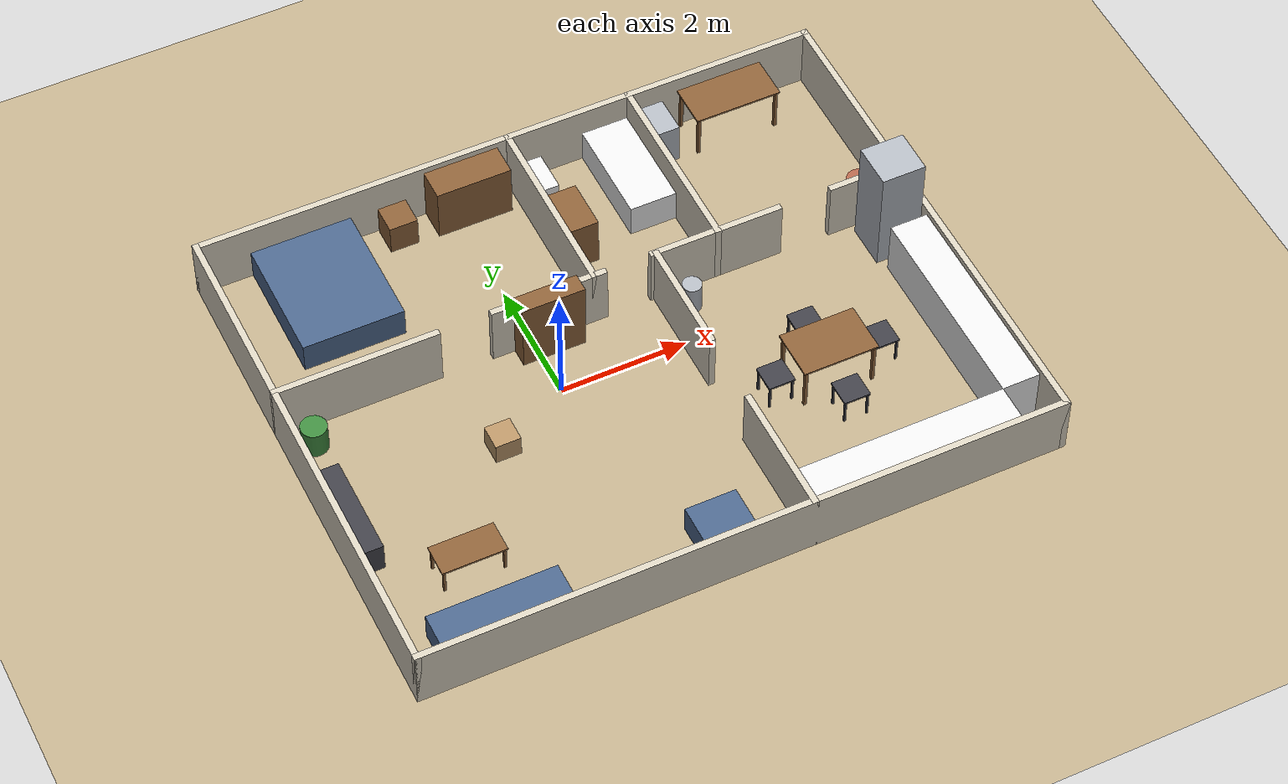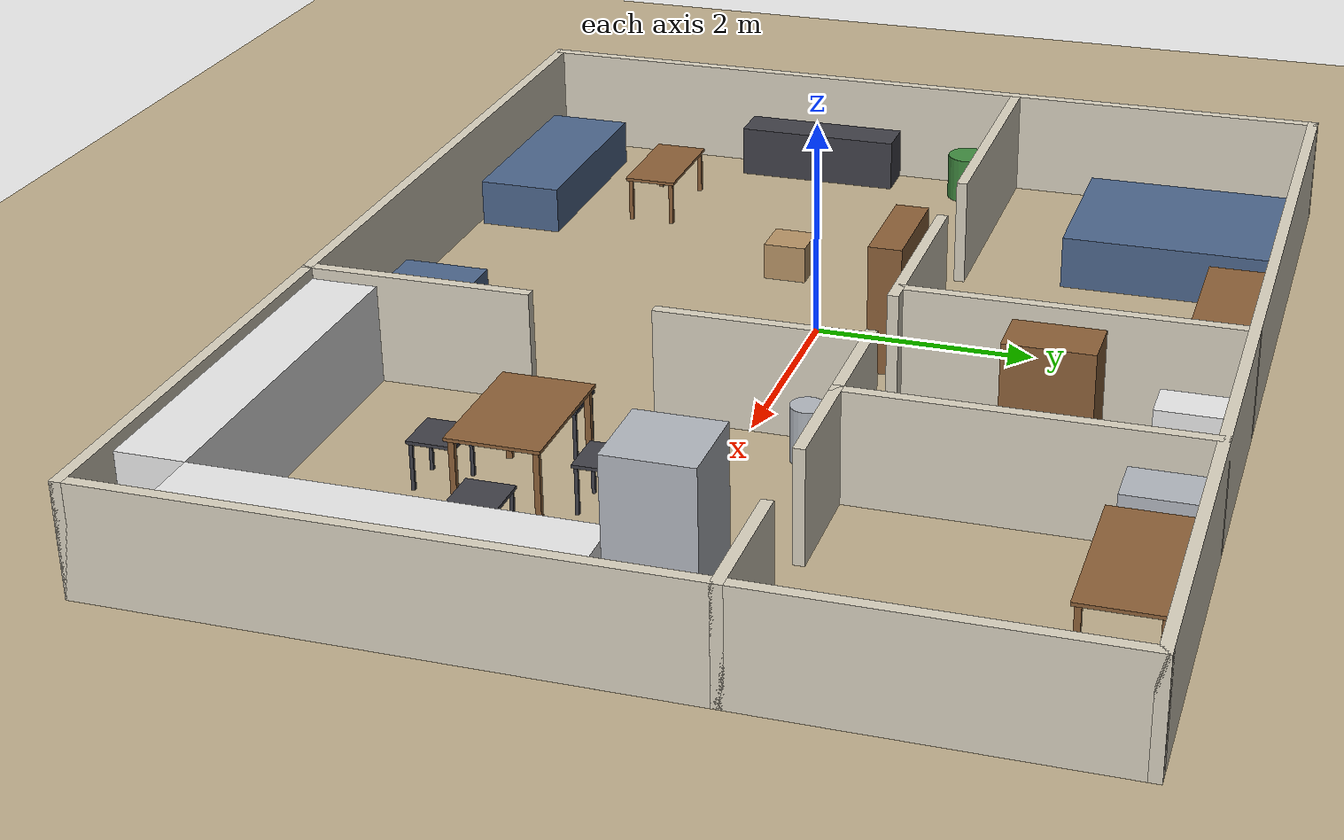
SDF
<?xml version="1.0" ?>
<sdf version="1.7">
  <world name="small_house">
    <physics type="ode">
      <max_step_size>0.01</max_step_size>
    </physics>

    <scene>
      <ambient>0.6 0.6 0.6 1</ambient>
      <background>0.7 0.8 0.9 1</background>
    </scene>

    <light type="directional" name="sun">
      <cast_shadows>true</cast_shadows>
      <pose>0 0 10 0 0 0</pose>
      <diffuse>0.8 0.8 0.8 1</diffuse>
      <specular>0.2 0.2 0.2 1</specular>
      <attenuation>
        <range>1000</range>
        <constant>0.9</constant>
        <linear>0.01</linear>
        <quadratic>0.001</quadratic>
      </attenuation>
      <direction>-0.5 0.1 -0.9</direction>
    </light>

    <model name="ground_plane">
      <static>true</static>
      <link name="link">
        <collision name="collision">
          <geometry><plane><normal>0 0 1</normal></plane></geometry>
        </collision>
        <visual name="visual">
          <geometry><plane><normal>0 0 1</normal><size>30 30</size></plane></geometry>
          <material><ambient>0.75 0.68 0.55 1</ambient><diffuse>0.75 0.68 0.55 1</diffuse><specular>0.1 0.1 0.1 1</specular></material>
        </visual>
      </link>
    </model>

    <model name="walls">
      <static>true</static>
      <pose>0 0 0 0 0 0</pose>
      <link name="wall_0">
        <pose>1.000 -4.000 0.500 0 0 0</pose>
        <collision name="collision"><geometry><box><size>10.100 0.100 1.000</size></box></geometry></collision>
        <visual name="visual"><geometry><box><size>10.100 0.100 1.000</size></box></geometry><material><ambient>0.85 0.82 0.75 1</ambient><diffuse>0.85 0.82 0.75 1</diffuse><specular>0.1 0.1 0.1 1</specular></material></visual>
      </link>
      <link name="wall_1">
        <pose>1.000 4.000 0.500 0 0 0</pose>
        <collision name="collision"><geometry><box><size>10.100 0.100 1.000</size></box></geometry></collision>
        <visual name="visual"><geometry><box><size>10.100 0.100 1.000</size></box></geometry><material><ambient>0.85 0.82 0.75 1</ambient><diffuse>0.85 0.82 0.75 1</diffuse><specular>0.1 0.1 0.1 1</specular></material></visual>
      </link>
      <link name="wall_2">
        <pose>-4.000 0.000 0.500 0 0 0</pose>
        <collision name="collision"><geometry><box><size>0.100 8.100 1.000</size></box></geometry></collision>
        <visual name="visual"><geometry><box><size>0.100 8.100 1.000</size></box></geometry><material><ambient>0.85 0.82 0.75 1</ambient><diffuse>0.85 0.82 0.75 1</diffuse><specular>0.1 0.1 0.1 1</specular></material></visual>
      </link>
      <link name="wall_3">
        <pose>6.000 0.000 0.500 0 0 0</pose>
        <collision name="collision"><geometry><box><size>0.100 8.100 1.000</size></box></geometry></collision>
        <visual name="visual"><geometry><box><size>0.100 8.100 1.000</size></box></geometry><material><ambient>0.85 0.82 0.75 1</ambient><diffuse>0.85 0.82 0.75 1</diffuse><specular>0.1 0.1 0.1 1</specular></material></visual>
      </link>
      <link name="wall_4">
        <pose>-2.750 1.000 0.500 0 0 0</pose>
        <collision name="collision"><geometry><box><size>2.600 0.100 1.000</size></box></geometry></collision>
        <visual name="visual"><geometry><box><size>2.600 0.100 1.000</size></box></geometry><material><ambient>0.85 0.82 0.75 1</ambient><diffuse>0.85 0.82 0.75 1</diffuse><specular>0.1 0.1 0.1 1</specular></material></visual>
      </link>
      <link name="wall_5">
        <pose>0.275 1.000 0.500 0 0 0</pose>
        <collision name="collision"><geometry><box><size>1.850 0.100 1.000</size></box></geometry></collision>
        <visual name="visual"><geometry><box><size>1.850 0.100 1.000</size></box></geometry><material><ambient>0.85 0.82 0.75 1</ambient><diffuse>0.85 0.82 0.75 1</diffuse><specular>0.1 0.1 0.1 1</specular></material></visual>
      </link>
      <link name="wall_6">
        <pose>2.975 1.000 0.500 0 0 0</pose>
        <collision name="collision"><geometry><box><size>2.150 0.100 1.000</size></box></geometry></collision>
        <visual name="visual"><geometry><box><size>2.150 0.100 1.000</size></box></geometry><material><ambient>0.85 0.82 0.75 1</ambient><diffuse>0.85 0.82 0.75 1</diffuse><specular>0.1 0.1 0.1 1</specular></material></visual>
      </link>
      <link name="wall_7">
        <pose>5.450 1.000 0.500 0 0 0</pose>
        <collision name="collision"><geometry><box><size>1.200 0.100 1.000</size></box></geometry></collision>
        <visual name="visual"><geometry><box><size>1.200 0.100 1.000</size></box></geometry><material><ambient>0.85 0.82 0.75 1</ambient><diffuse>0.85 0.82 0.75 1</diffuse><specular>0.1 0.1 0.1 1</specular></material></visual>
      </link>
      <link name="wall_8">
        <pose>1.000 2.500 0.500 0 0 0</pose>
        <collision name="collision"><geometry><box><size>0.100 3.100 1.000</size></box></geometry></collision>
        <visual name="visual"><geometry><box><size>0.100 3.100 1.000</size></box></geometry><material><ambient>0.85 0.82 0.75 1</ambient><diffuse>0.85 0.82 0.75 1</diffuse><specular>0.1 0.1 0.1 1</specular></material></visual>
      </link>
      <link name="wall_9">
        <pose>3.000 2.500 0.500 0 0 0</pose>
        <collision name="collision"><geometry><box><size>0.100 3.100 1.000</size></box></geometry></collision>
        <visual name="visual"><geometry><box><size>0.100 3.100 1.000</size></box></geometry><material><ambient>0.85 0.82 0.75 1</ambient><diffuse>0.85 0.82 0.75 1</diffuse><specular>0.1 0.1 0.1 1</specular></material></visual>
      </link>
      <link name="wall_10">
        <pose>2.000 -3.000 0.500 0 0 0</pose>
        <collision name="collision"><geometry><box><size>0.100 2.100 1.000</size></box></geometry></collision>
        <visual name="visual"><geometry><box><size>0.100 2.100 1.000</size></box></geometry><material><ambient>0.85 0.82 0.75 1</ambient><diffuse>0.85 0.82 0.75 1</diffuse><specular>0.1 0.1 0.1 1</specular></material></visual>
      </link>
      <link name="wall_11">
        <pose>2.000 0.100 0.500 0 0 0</pose>
        <collision name="collision"><geometry><box><size>0.100 1.900 1.000</size></box></geometry></collision>
        <visual name="visual"><geometry><box><size>0.100 1.900 1.000</size></box></geometry><material><ambient>0.85 0.82 0.75 1</ambient><diffuse>0.85 0.82 0.75 1</diffuse><specular>0.1 0.1 0.1 1</specular></material></visual>
      </link>
    </model>

    <model name="sofa">
      <static>true</static>
      <pose>-2.5 -3.5 0 0 0 0</pose>
      <link name="link">
        <pose>0.000 0.000 0.225 0 0 0</pose>
        <collision name="collision"><geometry><box><size>2.000 0.800 0.450</size></box></geometry></collision>
        <visual name="visual"><geometry><box><size>2.000 0.800 0.450</size></box></geometry><material><ambient>0.30 0.40 0.55 1</ambient><diffuse>0.30 0.40 0.55 1</diffuse><specular>0.1 0.1 0.1 1</specular></material></visual>
      </link>
    </model>

    <model name="armchair">
      <static>true</static>
      <pose>0.9 -3.4 0 0 0 0</pose>
      <link name="link">
        <pose>0.000 0.000 0.225 0 0 0</pose>
        <collision name="collision"><geometry><box><size>0.800 0.800 0.450</size></box></geometry></collision>
        <visual name="visual"><geometry><box><size>0.800 0.800 0.450</size></box></geometry><material><ambient>0.30 0.40 0.55 1</ambient><diffuse>0.30 0.40 0.55 1</diffuse><specular>0.1 0.1 0.1 1</specular></material></visual>
      </link>
    </model>

    <model name="tv_stand">
      <static>true</static>
      <pose>-3.75 -1.0 0 0 0 0</pose>
      <link name="link">
        <pose>0.000 0.000 0.250 0 0 0</pose>
        <collision name="collision"><geometry><box><size>0.400 1.600 0.500</size></box></geometry></collision>
        <visual name="visual"><geometry><box><size>0.400 1.600 0.500</size></box></geometry><material><ambient>0.25 0.25 0.28 1</ambient><diffuse>0.25 0.25 0.28 1</diffuse><specular>0.1 0.1 0.1 1</specular></material></visual>
      </link>
    </model>

    <model name="bookshelf">
      <static>true</static>
      <pose>0.2 0.8 0 0 0 0</pose>
      <link name="link">
        <pose>0.000 0.000 0.600 0 0 0</pose>
        <collision name="collision"><geometry><box><size>1.000 0.300 1.200</size></box></geometry></collision>
        <visual name="visual"><geometry><box><size>1.000 0.300 1.200</size></box></geometry><material><ambient>0.55 0.38 0.22 1</ambient><diffuse>0.55 0.38 0.22 1</diffuse><specular>0.1 0.1 0.1 1</specular></material></visual>
      </link>
    </model>

    <model name="moving_box">
      <static>true</static>
      <pose>-1.2 -0.6 0 0 0 0</pose>
      <link name="link">
        <pose>0.000 0.000 0.175 0 0 0</pose>
        <collision name="collision"><geometry><box><size>0.400 0.400 0.350</size></box></geometry></collision>
        <visual name="visual"><geometry><box><size>0.400 0.400 0.350</size></box></geometry><material><ambient>0.72 0.58 0.40 1</ambient><diffuse>0.72 0.58 0.40 1</diffuse><specular>0.1 0.1 0.1 1</specular></material></visual>
      </link>
    </model>

    <model name="counter_east">
      <static>true</static>
      <pose>5.65 -1.675 0 0 0 0</pose>
      <link name="link">
        <pose>0.000 0.000 0.450 0 0 0</pose>
        <collision name="collision"><geometry><box><size>0.600 3.350 0.900</size></box></geometry></collision>
        <visual name="visual"><geometry><box><size>0.600 3.350 0.900</size></box></geometry><material><ambient>0.92 0.92 0.92 1</ambient><diffuse>0.92 0.92 0.92 1</diffuse><specular>0.1 0.1 0.1 1</specular></material></visual>
      </link>
    </model>

    <model name="counter_south">
      <static>true</static>
      <pose>3.7 -3.65 0 0 0 0</pose>
      <link name="link">
        <pose>0.000 0.000 0.450 0 0 0</pose>
        <collision name="collision"><geometry><box><size>3.300 0.600 0.900</size></box></geometry></collision>
        <visual name="visual"><geometry><box><size>3.300 0.600 0.900</size></box></geometry><material><ambient>0.92 0.92 0.92 1</ambient><diffuse>0.92 0.92 0.92 1</diffuse><specular>0.1 0.1 0.1 1</specular></material></visual>
      </link>
    </model>

    <model name="fridge">
      <static>true</static>
      <pose>5.6 0.5 0 0 0 0</pose>
      <link name="link">
        <pose>0.000 0.000 0.900 0 0 0</pose>
        <collision name="collision"><geometry><box><size>0.700 0.700 1.800</size></box></geometry></collision>
        <visual name="visual"><geometry><box><size>0.700 0.700 1.800</size></box></geometry><material><ambient>0.70 0.72 0.75 1</ambient><diffuse>0.70 0.72 0.75 1</diffuse><specular>0.1 0.1 0.1 1</specular></material></visual>
      </link>
    </model>

    <model name="bed">
      <static>true</static>
      <pose>-2.4 2.95 0 0 0 0</pose>
      <link name="link">
        <pose>0.000 0.000 0.250 0 0 0</pose>
        <collision name="collision"><geometry><box><size>1.600 2.000 0.500</size></box></geometry></collision>
        <visual name="visual"><geometry><box><size>1.600 2.000 0.500</size></box></geometry><material><ambient>0.30 0.40 0.55 1</ambient><diffuse>0.30 0.40 0.55 1</diffuse><specular>0.1 0.1 0.1 1</specular></material></visual>
      </link>
    </model>

    <model name="nightstand">
      <static>true</static>
      <pose>-0.95 3.7 0 0 0 0</pose>
      <link name="link">
        <pose>0.000 0.000 0.250 0 0 0</pose>
        <collision name="collision"><geometry><box><size>0.450 0.450 0.500</size></box></geometry></collision>
        <visual name="visual"><geometry><box><size>0.450 0.450 0.500</size></box></geometry><material><ambient>0.55 0.38 0.22 1</ambient><diffuse>0.55 0.38 0.22 1</diffuse><specular>0.1 0.1 0.1 1</specular></material></visual>
      </link>
    </model>

    <model name="dresser">
      <static>true</static>
      <pose>0.2 3.7 0 0 0 0</pose>
      <link name="link">
        <pose>0.000 0.000 0.450 0 0 0</pose>
        <collision name="collision"><geometry><box><size>1.200 0.500 0.900</size></box></geometry></collision>
        <visual name="visual"><geometry><box><size>1.200 0.500 0.900</size></box></geometry><material><ambient>0.55 0.38 0.22 1</ambient><diffuse>0.55 0.38 0.22 1</diffuse><specular>0.1 0.1 0.1 1</specular></material></visual>
      </link>
    </model>

    <model name="bathtub">
      <static>true</static>
      <pose>2.575 3.1 0 0 0 0</pose>
      <link name="link">
        <pose>0.000 0.000 0.275 0 0 0</pose>
        <collision name="collision"><geometry><box><size>0.750 1.700 0.550</size></box></geometry></collision>
        <visual name="visual"><geometry><box><size>0.750 1.700 0.550</size></box></geometry><material><ambient>0.92 0.92 0.92 1</ambient><diffuse>0.92 0.92 0.92 1</diffuse><specular>0.1 0.1 0.1 1</specular></material></visual>
      </link>
    </model>

    <model name="toilet">
      <static>true</static>
      <pose>1.3 3.6 0 0 0 0</pose>
      <link name="link">
        <pose>0.000 0.000 0.200 0 0 0</pose>
        <collision name="collision"><geometry><box><size>0.400 0.650 0.400</size></box></geometry></collision>
        <visual name="visual"><geometry><box><size>0.400 0.650 0.400</size></box></geometry><material><ambient>0.92 0.92 0.92 1</ambient><diffuse>0.92 0.92 0.92 1</diffuse><specular>0.1 0.1 0.1 1</specular></material></visual>
      </link>
    </model>

    <model name="sink_cabinet">
      <static>true</static>
      <pose>1.3 2.4 0 0 0 0</pose>
      <link name="link">
        <pose>0.000 0.000 0.425 0 0 0</pose>
        <collision name="collision"><geometry><box><size>0.500 0.800 0.850</size></box></geometry></collision>
        <visual name="visual"><geometry><box><size>0.500 0.800 0.850</size></box></geometry><material><ambient>0.55 0.38 0.22 1</ambient><diffuse>0.55 0.38 0.22 1</diffuse><specular>0.1 0.1 0.1 1</specular></material></visual>
      </link>
    </model>

    <model name="filing_cabinet">
      <static>true</static>
      <pose>3.3 3.6 0 0 0 0</pose>
      <link name="link">
        <pose>0.000 0.000 0.350 0 0 0</pose>
        <collision name="collision"><geometry><box><size>0.450 0.600 0.700</size></box></geometry></collision>
        <visual name="visual"><geometry><box><size>0.450 0.600 0.700</size></box></geometry><material><ambient>0.70 0.72 0.75 1</ambient><diffuse>0.70 0.72 0.75 1</diffuse><specular>0.1 0.1 0.1 1</specular></material></visual>
      </link>
    </model>

    <model name="plant_living">
      <static>true</static>
      <pose>-3.6 0.6 0 0 0 0</pose>
      <link name="link">
        <pose>0.000 0.000 0.225 0 0 0</pose>
        <collision name="collision"><geometry><cylinder><radius>0.2</radius><length>0.45</length></cylinder></geometry></collision>
        <visual name="visual"><geometry><cylinder><radius>0.2</radius><length>0.45</length></cylinder></geometry><material><ambient>0.25 0.55 0.25 1</ambient><diffuse>0.25 0.55 0.25 1</diffuse><specular>0.1 0.1 0.1 1</specular></material></visual>
      </link>
    </model>

    <model name="plant_office">
      <static>true</static>
      <pose>5.6 1.4 0 0 0 0</pose>
      <link name="link">
        <pose>0.000 0.000 0.225 0 0 0</pose>
        <collision name="collision"><geometry><cylinder><radius>0.2</radius><length>0.45</length></cylinder></geometry></collision>
        <visual name="visual"><geometry><cylinder><radius>0.2</radius><length>0.45</length></cylinder></geometry><material><ambient>0.70 0.40 0.30 1</ambient><diffuse>0.70 0.40 0.30 1</diffuse><specular>0.1 0.1 0.1 1</specular></material></visual>
      </link>
    </model>

    <model name="trash_can">
      <static>true</static>
      <pose>2.4 0.6 0 0 0 0</pose>
      <link name="link">
        <pose>0.000 0.000 0.250 0 0 0</pose>
        <collision name="collision"><geometry><cylinder><radius>0.15</radius><length>0.5</length></cylinder></geometry></collision>
        <visual name="visual"><geometry><cylinder><radius>0.15</radius><length>0.5</length></cylinder></geometry><material><ambient>0.70 0.72 0.75 1</ambient><diffuse>0.70 0.72 0.75 1</diffuse><specular>0.1 0.1 0.1 1</specular></material></visual>
      </link>
    </model>

    <model name="coffee_table">
      <static>true</static>
      <pose>-2.5 -2.3 0 0 0 0</pose>
      <link name="top">
        <pose>0.000 0.000 0.435 0 0 0</pose>
        <collision name="collision"><geometry><box><size>1.000 0.500 0.030</size></box></geometry></collision>
        <visual name="visual"><geometry><box><size>1.000 0.500 0.030</size></box></geometry><material><ambient>0.55 0.38 0.22 1</ambient><diffuse>0.55 0.38 0.22 1</diffuse><specular>0.1 0.1 0.1 1</specular></material></visual>
      </link>
      <link name="leg_0">
        <pose>0.460 0.210 0.210 0 0 0</pose>
        <collision name="collision"><geometry><box><size>0.040 0.040 0.420</size></box></geometry></collision>
        <visual name="visual"><geometry><box><size>0.040 0.040 0.420</size></box></geometry><material><ambient>0.55 0.38 0.22 1</ambient><diffuse>0.55 0.38 0.22 1</diffuse><specular>0.1 0.1 0.1 1</specular></material></visual>
      </link>
      <link name="leg_1">
        <pose>0.460 -0.210 0.210 0 0 0</pose>
        <collision name="collision"><geometry><box><size>0.040 0.040 0.420</size></box></geometry></collision>
        <visual name="visual"><geometry><box><size>0.040 0.040 0.420</size></box></geometry><material><ambient>0.55 0.38 0.22 1</ambient><diffuse>0.55 0.38 0.22 1</diffuse><specular>0.1 0.1 0.1 1</specular></material></visual>
      </link>
      <link name="leg_2">
        <pose>-0.460 0.210 0.210 0 0 0</pose>
        <collision name="collision"><geometry><box><size>0.040 0.040 0.420</size></box></geometry></collision>
        <visual name="visual"><geometry><box><size>0.040 0.040 0.420</size></box></geometry><material><ambient>0.55 0.38 0.22 1</ambient><diffuse>0.55 0.38 0.22 1</diffuse><specular>0.1 0.1 0.1 1</specular></material></visual>
      </link>
      <link name="leg_3">
        <pose>-0.460 -0.210 0.210 0 0 0</pose>
        <collision name="collision"><geometry><box><size>0.040 0.040 0.420</size></box></geometry></collision>
        <visual name="visual"><geometry><box><size>0.040 0.040 0.420</size></box></geometry><material><ambient>0.55 0.38 0.22 1</ambient><diffuse>0.55 0.38 0.22 1</diffuse><specular>0.1 0.1 0.1 1</specular></material></visual>
      </link>
    </model>

    <model name="dining_table">
      <static>true</static>
      <pose>3.6 -1.4 0 0 0 0</pose>
      <link name="top">
        <pose>0.000 0.000 0.735 0 0 0</pose>
        <collision name="collision"><geometry><box><size>1.200 0.800 0.030</size></box></geometry></collision>
        <visual name="visual"><geometry><box><size>1.200 0.800 0.030</size></box></geometry><material><ambient>0.55 0.38 0.22 1</ambient><diffuse>0.55 0.38 0.22 1</diffuse><specular>0.1 0.1 0.1 1</specular></material></visual>
      </link>
      <link name="leg_0">
        <pose>0.550 0.350 0.360 0 0 0</pose>
        <collision name="collision"><geometry><box><size>0.050 0.050 0.720</size></box></geometry></collision>
        <visual name="visual"><geometry><box><size>0.050 0.050 0.720</size></box></geometry><material><ambient>0.55 0.38 0.22 1</ambient><diffuse>0.55 0.38 0.22 1</diffuse><specular>0.1 0.1 0.1 1</specular></material></visual>
      </link>
      <link name="leg_1">
        <pose>0.550 -0.350 0.360 0 0 0</pose>
        <collision name="collision"><geometry><box><size>0.050 0.050 0.720</size></box></geometry></collision>
        <visual name="visual"><geometry><box><size>0.050 0.050 0.720</size></box></geometry><material><ambient>0.55 0.38 0.22 1</ambient><diffuse>0.55 0.38 0.22 1</diffuse><specular>0.1 0.1 0.1 1</specular></material></visual>
      </link>
      <link name="leg_2">
        <pose>-0.550 0.350 0.360 0 0 0</pose>
        <collision name="collision"><geometry><box><size>0.050 0.050 0.720</size></box></geometry></collision>
        <visual name="visual"><geometry><box><size>0.050 0.050 0.720</size></box></geometry><material><ambient>0.55 0.38 0.22 1</ambient><diffuse>0.55 0.38 0.22 1</diffuse><specular>0.1 0.1 0.1 1</specular></material></visual>
      </link>
      <link name="leg_3">
        <pose>-0.550 -0.350 0.360 0 0 0</pose>
        <collision name="collision"><geometry><box><size>0.050 0.050 0.720</size></box></geometry></collision>
        <visual name="visual"><geometry><box><size>0.050 0.050 0.720</size></box></geometry><material><ambient>0.55 0.38 0.22 1</ambient><diffuse>0.55 0.38 0.22 1</diffuse><specular>0.1 0.1 0.1 1</specular></material></visual>
      </link>
    </model>

    <model name="chair_n">
      <static>true</static>
      <pose>3.6 -0.7 0 0 0 0</pose>
      <link name="top">
        <pose>0.000 0.000 0.435 0 0 0</pose>
        <collision name="collision"><geometry><box><size>0.420 0.420 0.030</size></box></geometry></collision>
        <visual name="visual"><geometry><box><size>0.420 0.420 0.030</size></box></geometry><material><ambient>0.25 0.25 0.28 1</ambient><diffuse>0.25 0.25 0.28 1</diffuse><specular>0.1 0.1 0.1 1</specular></material></visual>
      </link>
      <link name="leg_0">
        <pose>0.180 0.180 0.210 0 0 0</pose>
        <collision name="collision"><geometry><box><size>0.030 0.030 0.420</size></box></geometry></collision>
        <visual name="visual"><geometry><box><size>0.030 0.030 0.420</size></box></geometry><material><ambient>0.25 0.25 0.28 1</ambient><diffuse>0.25 0.25 0.28 1</diffuse><specular>0.1 0.1 0.1 1</specular></material></visual>
      </link>
      <link name="leg_1">
        <pose>0.180 -0.180 0.210 0 0 0</pose>
        <collision name="collision"><geometry><box><size>0.030 0.030 0.420</size></box></geometry></collision>
        <visual name="visual"><geometry><box><size>0.030 0.030 0.420</size></box></geometry><material><ambient>0.25 0.25 0.28 1</ambient><diffuse>0.25 0.25 0.28 1</diffuse><specular>0.1 0.1 0.1 1</specular></material></visual>
      </link>
      <link name="leg_2">
        <pose>-0.180 0.180 0.210 0 0 0</pose>
        <collision name="collision"><geometry><box><size>0.030 0.030 0.420</size></box></geometry></collision>
        <visual name="visual"><geometry><box><size>0.030 0.030 0.420</size></box></geometry><material><ambient>0.25 0.25 0.28 1</ambient><diffuse>0.25 0.25 0.28 1</diffuse><specular>0.1 0.1 0.1 1</specular></material></visual>
      </link>
      <link name="leg_3">
        <pose>-0.180 -0.180 0.210 0 0 0</pose>
        <collision name="collision"><geometry><box><size>0.030 0.030 0.420</size></box></geometry></collision>
        <visual name="visual"><geometry><box><size>0.030 0.030 0.420</size></box></geometry><material><ambient>0.25 0.25 0.28 1</ambient><diffuse>0.25 0.25 0.28 1</diffuse><specular>0.1 0.1 0.1 1</specular></material></visual>
      </link>
    </model>

    <model name="chair_s">
      <static>true</static>
      <pose>3.6 -2.1 0 0 0 0</pose>
      <link name="top">
        <pose>0.000 0.000 0.435 0 0 0</pose>
        <collision name="collision"><geometry><box><size>0.420 0.420 0.030</size></box></geometry></collision>
        <visual name="visual"><geometry><box><size>0.420 0.420 0.030</size></box></geometry><material><ambient>0.25 0.25 0.28 1</ambient><diffuse>0.25 0.25 0.28 1</diffuse><specular>0.1 0.1 0.1 1</specular></material></visual>
      </link>
      <link name="leg_0">
        <pose>0.180 0.180 0.210 0 0 0</pose>
        <collision name="collision"><geometry><box><size>0.030 0.030 0.420</size></box></geometry></collision>
        <visual name="visual"><geometry><box><size>0.030 0.030 0.420</size></box></geometry><material><ambient>0.25 0.25 0.28 1</ambient><diffuse>0.25 0.25 0.28 1</diffuse><specular>0.1 0.1 0.1 1</specular></material></visual>
      </link>
      <link name="leg_1">
        <pose>0.180 -0.180 0.210 0 0 0</pose>
        <collision name="collision"><geometry><box><size>0.030 0.030 0.420</size></box></geometry></collision>
        <visual name="visual"><geometry><box><size>0.030 0.030 0.420</size></box></geometry><material><ambient>0.25 0.25 0.28 1</ambient><diffuse>0.25 0.25 0.28 1</diffuse><specular>0.1 0.1 0.1 1</specular></material></visual>
      </link>
      <link name="leg_2">
        <pose>-0.180 0.180 0.210 0 0 0</pose>
        <collision name="collision"><geometry><box><size>0.030 0.030 0.420</size></box></geometry></collision>
        <visual name="visual"><geometry><box><size>0.030 0.030 0.420</size></box></geometry><material><ambient>0.25 0.25 0.28 1</ambient><diffuse>0.25 0.25 0.28 1</diffuse><specular>0.1 0.1 0.1 1</specular></material></visual>
      </link>
      <link name="leg_3">
        <pose>-0.180 -0.180 0.210 0 0 0</pose>
        <collision name="collision"><geometry><box><size>0.030 0.030 0.420</size></box></geometry></collision>
        <visual name="visual"><geometry><box><size>0.030 0.030 0.420</size></box></geometry><material><ambient>0.25 0.25 0.28 1</ambient><diffuse>0.25 0.25 0.28 1</diffuse><specular>0.1 0.1 0.1 1</specular></material></visual>
      </link>
    </model>

    <model name="chair_e">
      <static>true</static>
      <pose>4.45 -1.4 0 0 0 0</pose>
      <link name="top">
        <pose>0.000 0.000 0.435 0 0 0</pose>
        <collision name="collision"><geometry><box><size>0.420 0.420 0.030</size></box></geometry></collision>
        <visual name="visual"><geometry><box><size>0.420 0.420 0.030</size></box></geometry><material><ambient>0.25 0.25 0.28 1</ambient><diffuse>0.25 0.25 0.28 1</diffuse><specular>0.1 0.1 0.1 1</specular></material></visual>
      </link>
      <link name="leg_0">
        <pose>0.180 0.180 0.210 0 0 0</pose>
        <collision name="collision"><geometry><box><size>0.030 0.030 0.420</size></box></geometry></collision>
        <visual name="visual"><geometry><box><size>0.030 0.030 0.420</size></box></geometry><material><ambient>0.25 0.25 0.28 1</ambient><diffuse>0.25 0.25 0.28 1</diffuse><specular>0.1 0.1 0.1 1</specular></material></visual>
      </link>
      <link name="leg_1">
        <pose>0.180 -0.180 0.210 0 0 0</pose>
        <collision name="collision"><geometry><box><size>0.030 0.030 0.420</size></box></geometry></collision>
        <visual name="visual"><geometry><box><size>0.030 0.030 0.420</size></box></geometry><material><ambient>0.25 0.25 0.28 1</ambient><diffuse>0.25 0.25 0.28 1</diffuse><specular>0.1 0.1 0.1 1</specular></material></visual>
      </link>
      <link name="leg_2">
        <pose>-0.180 0.180 0.210 0 0 0</pose>
        <collision name="collision"><geometry><box><size>0.030 0.030 0.420</size></box></geometry></collision>
        <visual name="visual"><geometry><box><size>0.030 0.030 0.420</size></box></geometry><material><ambient>0.25 0.25 0.28 1</ambient><diffuse>0.25 0.25 0.28 1</diffuse><specular>0.1 0.1 0.1 1</specular></material></visual>
      </link>
      <link name="leg_3">
        <pose>-0.180 -0.180 0.210 0 0 0</pose>
        <collision name="collision"><geometry><box><size>0.030 0.030 0.420</size></box></geometry></collision>
        <visual name="visual"><geometry><box><size>0.030 0.030 0.420</size></box></geometry><material><ambient>0.25 0.25 0.28 1</ambient><diffuse>0.25 0.25 0.28 1</diffuse><specular>0.1 0.1 0.1 1</specular></material></visual>
      </link>
    </model>

    <model name="chair_w">
      <static>true</static>
      <pose>2.75 -1.4 0 0 0 0</pose>
      <link name="top">
        <pose>0.000 0.000 0.435 0 0 0</pose>
        <collision name="collision"><geometry><box><size>0.420 0.420 0.030</size></box></geometry></collision>
        <visual name="visual"><geometry><box><size>0.420 0.420 0.030</size></box></geometry><material><ambient>0.25 0.25 0.28 1</ambient><diffuse>0.25 0.25 0.28 1</diffuse><specular>0.1 0.1 0.1 1</specular></material></visual>
      </link>
      <link name="leg_0">
        <pose>0.180 0.180 0.210 0 0 0</pose>
        <collision name="collision"><geometry><box><size>0.030 0.030 0.420</size></box></geometry></collision>
        <visual name="visual"><geometry><box><size>0.030 0.030 0.420</size></box></geometry><material><ambient>0.25 0.25 0.28 1</ambient><diffuse>0.25 0.25 0.28 1</diffuse><specular>0.1 0.1 0.1 1</specular></material></visual>
      </link>
      <link name="leg_1">
        <pose>0.180 -0.180 0.210 0 0 0</pose>
        <collision name="collision"><geometry><box><size>0.030 0.030 0.420</size></box></geometry></collision>
        <visual name="visual"><geometry><box><size>0.030 0.030 0.420</size></box></geometry><material><ambient>0.25 0.25 0.28 1</ambient><diffuse>0.25 0.25 0.28 1</diffuse><specular>0.1 0.1 0.1 1</specular></material></visual>
      </link>
      <link name="leg_2">
        <pose>-0.180 0.180 0.210 0 0 0</pose>
        <collision name="collision"><geometry><box><size>0.030 0.030 0.420</size></box></geometry></collision>
        <visual name="visual"><geometry><box><size>0.030 0.030 0.420</size></box></geometry><material><ambient>0.25 0.25 0.28 1</ambient><diffuse>0.25 0.25 0.28 1</diffuse><specular>0.1 0.1 0.1 1</specular></material></visual>
      </link>
      <link name="leg_3">
        <pose>-0.180 -0.180 0.210 0 0 0</pose>
        <collision name="collision"><geometry><box><size>0.030 0.030 0.420</size></box></geometry></collision>
        <visual name="visual"><geometry><box><size>0.030 0.030 0.420</size></box></geometry><material><ambient>0.25 0.25 0.28 1</ambient><diffuse>0.25 0.25 0.28 1</diffuse><specular>0.1 0.1 0.1 1</specular></material></visual>
      </link>
    </model>

    <model name="desk">
      <static>true</static>
      <pose>4.5 3.6 0 0 0 0</pose>
      <link name="top">
        <pose>0.000 0.000 0.735 0 0 0</pose>
        <collision name="collision"><geometry><box><size>1.400 0.700 0.030</size></box></geometry></collision>
        <visual name="visual"><geometry><box><size>1.400 0.700 0.030</size></box></geometry><material><ambient>0.55 0.38 0.22 1</ambient><diffuse>0.55 0.38 0.22 1</diffuse><specular>0.1 0.1 0.1 1</specular></material></visual>
      </link>
      <link name="leg_0">
        <pose>0.650 0.300 0.360 0 0 0</pose>
        <collision name="collision"><geometry><box><size>0.050 0.050 0.720</size></box></geometry></collision>
        <visual name="visual"><geometry><box><size>0.050 0.050 0.720</size></box></geometry><material><ambient>0.55 0.38 0.22 1</ambient><diffuse>0.55 0.38 0.22 1</diffuse><specular>0.1 0.1 0.1 1</specular></material></visual>
      </link>
      <link name="leg_1">
        <pose>0.650 -0.300 0.360 0 0 0</pose>
        <collision name="collision"><geometry><box><size>0.050 0.050 0.720</size></box></geometry></collision>
        <visual name="visual"><geometry><box><size>0.050 0.050 0.720</size></box></geometry><material><ambient>0.55 0.38 0.22 1</ambient><diffuse>0.55 0.38 0.22 1</diffuse><specular>0.1 0.1 0.1 1</specular></material></visual>
      </link>
      <link name="leg_2">
        <pose>-0.650 0.300 0.360 0 0 0</pose>
        <collision name="collision"><geometry><box><size>0.050 0.050 0.720</size></box></geometry></collision>
        <visual name="visual"><geometry><box><size>0.050 0.050 0.720</size></box></geometry><material><ambient>0.55 0.38 0.22 1</ambient><diffuse>0.55 0.38 0.22 1</diffuse><specular>0.1 0.1 0.1 1</specular></material></visual>
      </link>
      <link name="leg_3">
        <pose>-0.650 -0.300 0.360 0 0 0</pose>
        <collision name="collision"><geometry><box><size>0.050 0.050 0.720</size></box></geometry></collision>
        <visual name="visual"><geometry><box><size>0.050 0.050 0.720</size></box></geometry><material><ambient>0.55 0.38 0.22 1</ambient><diffuse>0.55 0.38 0.22 1</diffuse><specular>0.1 0.1 0.1 1</specular></material></visual>
      </link>
    </model>
  </world>
</sdf>
